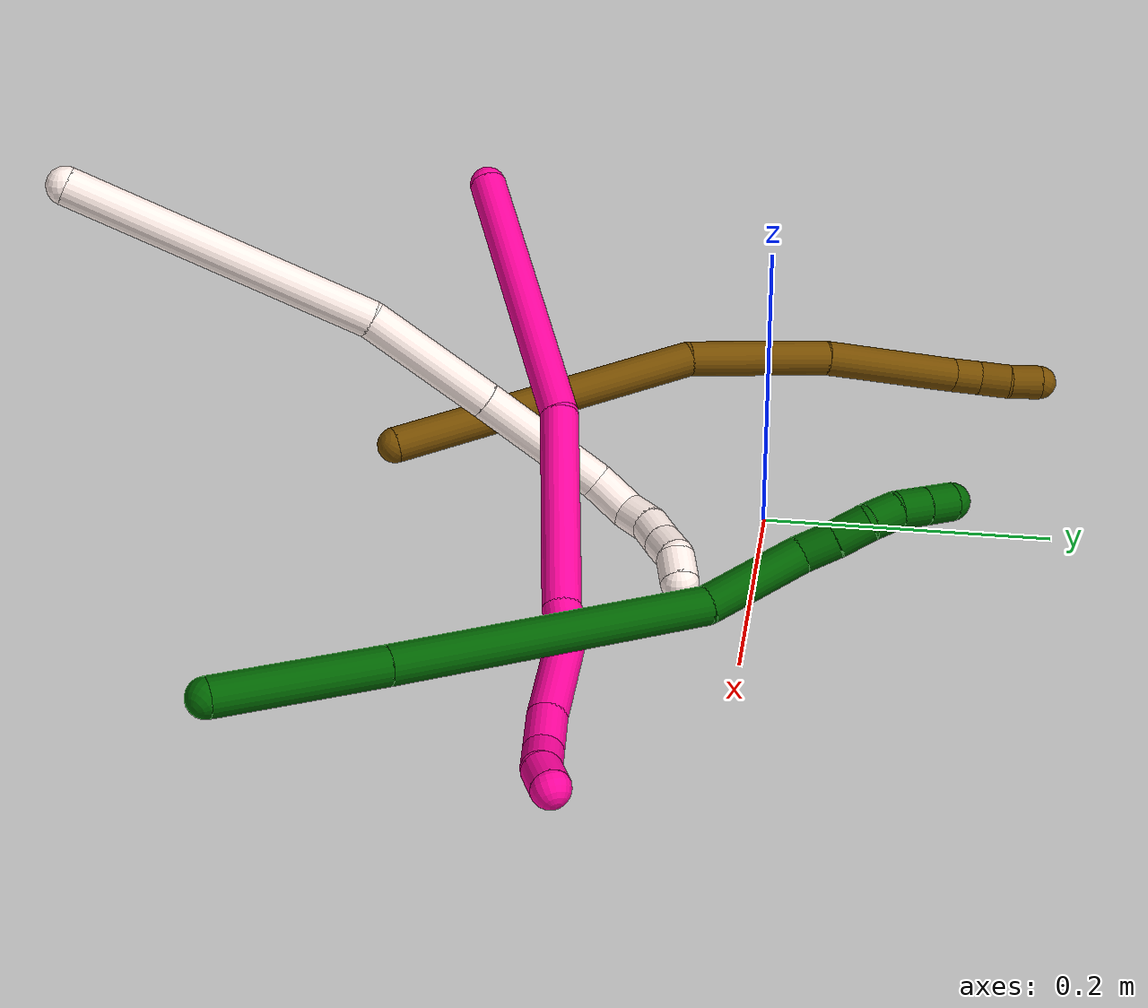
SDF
<sdf version="1.7">
 <world name="default">
  <model name="6">
   <static>0</static>
   <link name="6">
    <collision name="collision-cylinder-e_1_1_4">
     <pose>-0.021512 0.024012 -0.043616 -2.63833 -0.40784 1.35484</pose>
     <geometry><cylinder><radius>0.0125</radius><length>0.108475</length></cylinder></geometry>
     <surface>
      <friction><ode><mu>1.16</mu><mu2>1.16</mu2><slip1>0</slip1><slip2>0</slip2></ode></friction>
      <contact><ode><kp>1e+06</kp><kd>1</kd><max_vel>0</max_vel><min_depth>0.001</min_depth></ode></contact>
     </surface>
    </collision>
    <visual name="visual-cylinder-e_1_1_4">
     <pose>-0.021512 0.024012 -0.043616 -2.63833 -0.40784 1.35484</pose>
     <geometry><cylinder><radius>0.0125</radius><length>0.108475</length></cylinder></geometry>
     <material><ambient>0 0.392157 0.003922 1</ambient></material>
    </visual>
    <collision name="collision-cylinder-e_2_4_5">
     <pose>-0.083846 0.093897 -0.172918 -2.65006 -0.397635 1.35342</pose>
     <geometry><cylinder><radius>0.0125</radius><length>0.210836</length></cylinder></geometry>
     <surface>
      <friction><ode><mu>1.16</mu><mu2>1.16</mu2><slip1>0</slip1><slip2>0</slip2></ode></friction>
      <contact><ode><kp>1e+06</kp><kd>1</kd><max_vel>0</max_vel><min_depth>0.001</min_depth></ode></contact>
     </surface>
    </collision>
    <visual name="visual-cylinder-e_2_4_5">
     <pose>-0.083846 0.093897 -0.172918 -2.65006 -0.397635 1.35342</pose>
     <geometry><cylinder><radius>0.0125</radius><length>0.210836</length></cylinder></geometry>
     <material><ambient>0 0.392157 0.003922 1</ambient></material>
    </visual>
    <collision name="collision-cylinder-e_3_5_6">
     <pose>-0.139389 0.144907 -0.290631 -2.98256 -0.426072 2.43569</pose>
     <geometry><cylinder><radius>0.0125</radius><length>0.07124</length></cylinder></geometry>
     <surface>
      <friction><ode><mu>1.16</mu><mu2>1.16</mu2><slip1>0</slip1><slip2>0</slip2></ode></friction>
      <contact><ode><kp>1e+06</kp><kd>1</kd><max_vel>0</max_vel><min_depth>0.001</min_depth></ode></contact>
     </surface>
    </collision>
    <visual name="visual-cylinder-e_3_5_6">
     <pose>-0.139389 0.144907 -0.290631 -2.98256 -0.426072 2.43569</pose>
     <geometry><cylinder><radius>0.0125</radius><length>0.07124</length></cylinder></geometry>
     <material><ambient>0 0.392157 0.003922 1</ambient></material>
    </visual>
    <collision name="collision-cylinder-e_4_6_7">
     <pose>-0.16261 0.1509 -0.331244 -3.04215 -0.777803 2.8999</pose>
     <geometry><cylinder><radius>0.0125</radius><length>0.024225</length></cylinder></geometry>
     <surface>
      <friction><ode><mu>1.16</mu><mu2>1.16</mu2><slip1>0</slip1><slip2>0</slip2></ode></friction>
      <contact><ode><kp>1e+06</kp><kd>1</kd><max_vel>0</max_vel><min_depth>0.001</min_depth></ode></contact>
     </surface>
    </collision>
    <visual name="visual-cylinder-e_4_6_7">
     <pose>-0.16261 0.1509 -0.331244 -3.04215 -0.777803 2.8999</pose>
     <geometry><cylinder><radius>0.0125</radius><length>0.024225</length></cylinder></geometry>
     <material><ambient>0 0.392157 0.003922 1</ambient></material>
    </visual>
    <collision name="collision-cylinder-e_5_7_8">
     <pose>-0.179045 0.15179 -0.348531 -3.13775 -0.739419 3.13169</pose>
     <geometry><cylinder><radius>0.0125</radius><length>0.023551</length></cylinder></geometry>
     <surface>
      <friction><ode><mu>1.16</mu><mu2>1.16</mu2><slip1>0</slip1><slip2>0</slip2></ode></friction>
      <contact><ode><kp>1e+06</kp><kd>1</kd><max_vel>0</max_vel><min_depth>0.001</min_depth></ode></contact>
     </surface>
    </collision>
    <visual name="visual-cylinder-e_5_7_8">
     <pose>-0.179045 0.15179 -0.348531 -3.13775 -0.739419 3.13169</pose>
     <geometry><cylinder><radius>0.0125</radius><length>0.023551</length></cylinder></geometry>
     <material><ambient>0 0.392157 0.003922 1</ambient></material>
    </visual>
    <collision name="collision-cylinder-e_6_8_9">
     <pose>-0.191517 0.154137 -0.366294 -2.8917 -0.451613 2.14092</pose>
     <geometry><cylinder><radius>0.0125</radius><length>0.02079</length></cylinder></geometry>
     <surface>
      <friction><ode><mu>1.16</mu><mu2>1.16</mu2><slip1>0</slip1><slip2>0</slip2></ode></friction>
      <contact><ode><kp>1e+06</kp><kd>1</kd><max_vel>0</max_vel><min_depth>0.001</min_depth></ode></contact>
     </surface>
    </collision>
    <visual name="visual-cylinder-e_6_8_9">
     <pose>-0.191517 0.154137 -0.366294 -2.8917 -0.451613 2.14092</pose>
     <geometry><cylinder><radius>0.0125</radius><length>0.02079</length></cylinder></geometry>
     <material><ambient>0 0.392157 0.003922 1</ambient></material>
    </visual>
    <collision name="collision-cylinder-e_7_9_10">
     <pose>-0.200349 0.161077 -0.383648 -2.63253 -0.424869 1.38437</pose>
     <geometry><cylinder><radius>0.0125</radius><length>0.020844</length></cylinder></geometry>
     <surface>
      <friction><ode><mu>1.16</mu><mu2>1.16</mu2><slip1>0</slip1><slip2>0</slip2></ode></friction>
      <contact><ode><kp>1e+06</kp><kd>1</kd><max_vel>0</max_vel><min_depth>0.001</min_depth></ode></contact>
     </surface>
    </collision>
    <visual name="visual-cylinder-e_7_9_10">
     <pose>-0.200349 0.161077 -0.383648 -2.63253 -0.424869 1.38437</pose>
     <geometry><cylinder><radius>0.0125</radius><length>0.020844</length></cylinder></geometry>
     <material><ambient>0 0.392157 0.003922 1</ambient></material>
    </visual>
    <collision name="collision-cylinder-e_8_10_2">
     <pose>-0.208645 0.170146 -0.399981 -2.63706 -0.410665 1.3592</pose>
     <geometry><cylinder><radius>0.0125</radius><length>0.020039</length></cylinder></geometry>
     <surface>
      <friction><ode><mu>1.16</mu><mu2>1.16</mu2><slip1>0</slip1><slip2>0</slip2></ode></friction>
      <contact><ode><kp>1e+06</kp><kd>1</kd><max_vel>0</max_vel><min_depth>0.001</min_depth></ode></contact>
     </surface>
    </collision>
    <visual name="visual-cylinder-e_8_10_2">
     <pose>-0.208645 0.170146 -0.399981 -2.63706 -0.410665 1.3592</pose>
     <geometry><cylinder><radius>0.0125</radius><length>0.020039</length></cylinder></geometry>
     <material><ambient>0 0.392157 0.003922 1</ambient></material>
    </visual>
    <collision name="collision-sphere-2">
     <pose>-0.212645 0.174586 -0.408023 0 -0 0</pose>
     <geometry><sphere><radius>0.0125</radius></sphere></geometry>
     <surface>
      <friction><ode><mu>1.16</mu><mu2>1.16</mu2><slip1>0</slip1><slip2>0</slip2></ode></friction>
      <contact><ode><kp>1e+06</kp><kd>1</kd><max_vel>0</max_vel><min_depth>0.001</min_depth></ode></contact>
     </surface>
    </collision>
    <visual name="visual-sphere-2">
     <pose>-0.212645 0.174586 -0.408023 0 -0 0</pose>
     <geometry><sphere><radius>0.0125</radius></sphere></geometry>
     <material><ambient>0 0.392157 0.003922 1</ambient></material>
    </visual>
    <collision name="collision-sphere-10">
     <pose>-0.204645 0.165705 -0.391939 0 -0 0</pose>
     <geometry><sphere><radius>0.0125</radius></sphere></geometry>
     <surface>
      <friction><ode><mu>1.16</mu><mu2>1.16</mu2><slip1>0</slip1><slip2>0</slip2></ode></friction>
      <contact><ode><kp>1e+06</kp><kd>1</kd><max_vel>0</max_vel><min_depth>0.001</min_depth></ode></contact>
     </surface>
    </collision>
    <visual name="visual-sphere-10">
     <pose>-0.204645 0.165705 -0.391939 0 -0 0</pose>
     <geometry><sphere><radius>0.0125</radius></sphere></geometry>
     <material><ambient>0 0.392157 0.003922 1</ambient></material>
    </visual>
    <collision name="collision-sphere-9">
     <pose>-0.196054 0.15645 -0.375357 0 -0 0</pose>
     <geometry><sphere><radius>0.0125</radius></sphere></geometry>
     <surface>
      <friction><ode><mu>1.16</mu><mu2>1.16</mu2><slip1>0</slip1><slip2>0</slip2></ode></friction>
      <contact><ode><kp>1e+06</kp><kd>1</kd><max_vel>0</max_vel><min_depth>0.001</min_depth></ode></contact>
     </surface>
    </collision>
    <visual name="visual-sphere-9">
     <pose>-0.196054 0.15645 -0.375357 0 -0 0</pose>
     <geometry><sphere><radius>0.0125</radius></sphere></geometry>
     <material><ambient>0 0.392157 0.003922 1</ambient></material>
    </visual>
    <collision name="collision-sphere-4">
     <pose>-0.043024 0.048025 -0.087231 0 -0 0</pose>
     <geometry><sphere><radius>0.0125</radius></sphere></geometry>
     <surface>
      <friction><ode><mu>1.16</mu><mu2>1.16</mu2><slip1>0</slip1><slip2>0</slip2></ode></friction>
      <contact><ode><kp>1e+06</kp><kd>1</kd><max_vel>0</max_vel><min_depth>0.001</min_depth></ode></contact>
     </surface>
    </collision>
    <visual name="visual-sphere-4">
     <pose>-0.043024 0.048025 -0.087231 0 -0 0</pose>
     <geometry><sphere><radius>0.0125</radius></sphere></geometry>
     <material><ambient>0 0.392157 0.003922 1</ambient></material>
    </visual>
    <collision name="collision-sphere-1">
     <geometry><sphere><radius>0.0125</radius></sphere></geometry>
     <surface>
      <friction><ode><mu>1.16</mu><mu2>1.16</mu2><slip1>0</slip1><slip2>0</slip2></ode></friction>
      <contact><ode><kp>1e+06</kp><kd>1</kd><max_vel>0</max_vel><min_depth>0.001</min_depth></ode></contact>
     </surface>
    </collision>
    <visual name="visual-sphere-1">
     <geometry><sphere><radius>0.0125</radius></sphere></geometry>
     <material><ambient>0 0.392157 0.003922 1</ambient></material>
    </visual>
    <collision name="collision-sphere-8">
     <pose>-0.18698 0.151824 -0.357232 0 -0 0</pose>
     <geometry><sphere><radius>0.0125</radius></sphere></geometry>
     <surface>
      <friction><ode><mu>1.16</mu><mu2>1.16</mu2><slip1>0</slip1><slip2>0</slip2></ode></friction>
      <contact><ode><kp>1e+06</kp><kd>1</kd><max_vel>0</max_vel><min_depth>0.001</min_depth></ode></contact>
     </surface>
    </collision>
    <visual name="visual-sphere-8">
     <pose>-0.18698 0.151824 -0.357232 0 -0 0</pose>
     <geometry><sphere><radius>0.0125</radius></sphere></geometry>
     <material><ambient>0 0.392157 0.003922 1</ambient></material>
    </visual>
    <collision name="collision-sphere-5">
     <pose>-0.124668 0.13977 -0.258605 0 -0 0</pose>
     <geometry><sphere><radius>0.0125</radius></sphere></geometry>
     <surface>
      <friction><ode><mu>1.16</mu><mu2>1.16</mu2><slip1>0</slip1><slip2>0</slip2></ode></friction>
      <contact><ode><kp>1e+06</kp><kd>1</kd><max_vel>0</max_vel><min_depth>0.001</min_depth></ode></contact>
     </surface>
    </collision>
    <visual name="visual-sphere-5">
     <pose>-0.124668 0.13977 -0.258605 0 -0 0</pose>
     <geometry><sphere><radius>0.0125</radius></sphere></geometry>
     <material><ambient>0 0.392157 0.003922 1</ambient></material>
    </visual>
    <collision name="collision-sphere-6">
     <pose>-0.154111 0.150043 -0.322657 0 -0 0</pose>
     <geometry><sphere><radius>0.0125</radius></sphere></geometry>
     <surface>
      <friction><ode><mu>1.16</mu><mu2>1.16</mu2><slip1>0</slip1><slip2>0</slip2></ode></friction>
      <contact><ode><kp>1e+06</kp><kd>1</kd><max_vel>0</max_vel><min_depth>0.001</min_depth></ode></contact>
     </surface>
    </collision>
    <visual name="visual-sphere-6">
     <pose>-0.154111 0.150043 -0.322657 0 -0 0</pose>
     <geometry><sphere><radius>0.0125</radius></sphere></geometry>
     <material><ambient>0 0.392157 0.003922 1</ambient></material>
    </visual>
    <collision name="collision-sphere-7">
     <pose>-0.17111 0.151757 -0.339831 0 -0 0</pose>
     <geometry><sphere><radius>0.0125</radius></sphere></geometry>
     <surface>
      <friction><ode><mu>1.16</mu><mu2>1.16</mu2><slip1>0</slip1><slip2>0</slip2></ode></friction>
      <contact><ode><kp>1e+06</kp><kd>1</kd><max_vel>0</max_vel><min_depth>0.001</min_depth></ode></contact>
     </surface>
    </collision>
    <visual name="visual-sphere-7">
     <pose>-0.17111 0.151757 -0.339831 0 -0 0</pose>
     <geometry><sphere><radius>0.0125</radius></sphere></geometry>
     <material><ambient>0 0.392157 0.003922 1</ambient></material>
    </visual>
    <inertial>
     <pose>-0.100872 0.099854 -0.203506 0 -0 0</pose>
     <mass>0.5</mass>
     <inertia>
      <ixx>0.00097</ixx>
      <ixy>0</ixy>
      <ixz>0</ixz>
      <iyy>0.000869</iyy>
      <iyz>0</iyz>
      <izz>-6.3e-05</izz>
     </inertia>
    </inertial>
   </link>
   <pose>0.387447 -0.28635 0.066951 -1.84029 0.354952 -2.1042</pose>
  </model>
  <model name="11">
   <static>0</static>
   <link name="11">
    <collision name="collision-cylinder-e_1_1_4">
     <pose>-0.013264 0.090094 -0.049282 -2.07134 -0.128449 0.216127</pose>
     <geometry><cylinder><radius>0.0125</radius><length>0.20709</length></cylinder></geometry>
     <surface>
      <friction><ode><mu>1.16</mu><mu2>1.16</mu2><slip1>0</slip1><slip2>0</slip2></ode></friction>
      <contact><ode><kp>1e+06</kp><kd>1</kd><max_vel>0</max_vel><min_depth>0.001</min_depth></ode></contact>
     </surface>
    </collision>
    <visual name="visual-cylinder-e_1_1_4">
     <pose>-0.013264 0.090094 -0.049282 -2.07134 -0.128449 0.216127</pose>
     <geometry><cylinder><radius>0.0125</radius><length>0.20709</length></cylinder></geometry>
     <material><ambient>1 0.933333 0.909804 1</ambient></material>
    </visual>
    <collision name="collision-cylinder-e_2_4_5">
     <pose>-0.028026 0.215361 -0.127117 -2.25266 -0.033069 0.069416</pose>
     <geometry><cylinder><radius>0.0125</radius><length>0.090657</length></cylinder></geometry>
     <surface>
      <friction><ode><mu>1.16</mu><mu2>1.16</mu2><slip1>0</slip1><slip2>0</slip2></ode></friction>
      <contact><ode><kp>1e+06</kp><kd>1</kd><max_vel>0</max_vel><min_depth>0.001</min_depth></ode></contact>
     </surface>
    </collision>
    <visual name="visual-cylinder-e_2_4_5">
     <pose>-0.028026 0.215361 -0.127117 -2.25266 -0.033069 0.069416</pose>
     <geometry><cylinder><radius>0.0125</radius><length>0.090657</length></cylinder></geometry>
     <material><ambient>1 0.933333 0.909804 1</ambient></material>
    </visual>
    <collision name="collision-cylinder-e_3_5_6">
     <pose>-0.03146 0.285559 -0.185319 -2.27328 -0.042143 0.090843</pose>
     <geometry><cylinder><radius>0.0125</radius><length>0.09186</length></cylinder></geometry>
     <surface>
      <friction><ode><mu>1.16</mu><mu2>1.16</mu2><slip1>0</slip1><slip2>0</slip2></ode></friction>
      <contact><ode><kp>1e+06</kp><kd>1</kd><max_vel>0</max_vel><min_depth>0.001</min_depth></ode></contact>
     </surface>
    </collision>
    <visual name="visual-cylinder-e_3_5_6">
     <pose>-0.03146 0.285559 -0.185319 -2.27328 -0.042143 0.090843</pose>
     <geometry><cylinder><radius>0.0125</radius><length>0.09186</length></cylinder></geometry>
     <material><ambient>1 0.933333 0.909804 1</ambient></material>
    </visual>
    <collision name="collision-cylinder-e_4_6_7">
     <pose>-0.027892 0.331874 -0.222281 -2.14551 0.38831 -0.693966</pose>
     <geometry><cylinder><radius>0.0125</radius><length>0.029068</length></cylinder></geometry>
     <surface>
      <friction><ode><mu>1.16</mu><mu2>1.16</mu2><slip1>0</slip1><slip2>0</slip2></ode></friction>
      <contact><ode><kp>1e+06</kp><kd>1</kd><max_vel>0</max_vel><min_depth>0.001</min_depth></ode></contact>
     </surface>
    </collision>
    <visual name="visual-cylinder-e_4_6_7">
     <pose>-0.027892 0.331874 -0.222281 -2.14551 0.38831 -0.693966</pose>
     <geometry><cylinder><radius>0.0125</radius><length>0.029068</length></cylinder></geometry>
     <material><ambient>1 0.933333 0.909804 1</ambient></material>
    </visual>
    <collision name="collision-cylinder-e_5_7_8">
     <pose>-0.015696 0.351388 -0.230137 -1.6368 0.682107 -0.724823</pose>
     <geometry><cylinder><radius>0.0125</radius><length>0.021233</length></cylinder></geometry>
     <surface>
      <friction><ode><mu>1.16</mu><mu2>1.16</mu2><slip1>0</slip1><slip2>0</slip2></ode></friction>
      <contact><ode><kp>1e+06</kp><kd>1</kd><max_vel>0</max_vel><min_depth>0.001</min_depth></ode></contact>
     </surface>
    </collision>
    <visual name="visual-cylinder-e_5_7_8">
     <pose>-0.015696 0.351388 -0.230137 -1.6368 0.682107 -0.724823</pose>
     <geometry><cylinder><radius>0.0125</radius><length>0.021233</length></cylinder></geometry>
     <material><ambient>1 0.933333 0.909804 1</ambient></material>
    </visual>
    <collision name="collision-cylinder-e_6_8_9">
     <pose>-0.000669 0.365118 -0.231469 -1.71304 0.982218 -1.10545</pose>
     <geometry><cylinder><radius>0.0125</radius><length>0.02004</length></cylinder></geometry>
     <surface>
      <friction><ode><mu>1.16</mu><mu2>1.16</mu2><slip1>0</slip1><slip2>0</slip2></ode></friction>
      <contact><ode><kp>1e+06</kp><kd>1</kd><max_vel>0</max_vel><min_depth>0.001</min_depth></ode></contact>
     </surface>
    </collision>
    <visual name="visual-cylinder-e_6_8_9">
     <pose>-0.000669 0.365118 -0.231469 -1.71304 0.982218 -1.10545</pose>
     <geometry><cylinder><radius>0.0125</radius><length>0.02004</length></cylinder></geometry>
     <material><ambient>1 0.933333 0.909804 1</ambient></material>
    </visual>
    <collision name="collision-cylinder-e_7_9_10">
     <pose>0.016066 0.376044 -0.231972 -1.51817 0.997224 -0.953635</pose>
     <geometry><cylinder><radius>0.0125</radius><length>0.020003</length></cylinder></geometry>
     <surface>
      <friction><ode><mu>1.16</mu><mu2>1.16</mu2><slip1>0</slip1><slip2>0</slip2></ode></friction>
      <contact><ode><kp>1e+06</kp><kd>1</kd><max_vel>0</max_vel><min_depth>0.001</min_depth></ode></contact>
     </surface>
    </collision>
    <visual name="visual-cylinder-e_7_9_10">
     <pose>0.016066 0.376044 -0.231972 -1.51817 0.997224 -0.953635</pose>
     <geometry><cylinder><radius>0.0125</radius><length>0.020003</length></cylinder></geometry>
     <material><ambient>1 0.933333 0.909804 1</ambient></material>
    </visual>
    <collision name="collision-cylinder-e_8_10_2">
     <pose>0.033352 0.384189 -0.235446 -2.51422 1.08923 -2.15823</pose>
     <geometry><cylinder><radius>0.0125</radius><length>0.02005</length></cylinder></geometry>
     <surface>
      <friction><ode><mu>1.16</mu><mu2>1.16</mu2><slip1>0</slip1><slip2>0</slip2></ode></friction>
      <contact><ode><kp>1e+06</kp><kd>1</kd><max_vel>0</max_vel><min_depth>0.001</min_depth></ode></contact>
     </surface>
    </collision>
    <visual name="visual-cylinder-e_8_10_2">
     <pose>0.033352 0.384189 -0.235446 -2.51422 1.08923 -2.15823</pose>
     <geometry><cylinder><radius>0.0125</radius><length>0.02005</length></cylinder></geometry>
     <material><ambient>1 0.933333 0.909804 1</ambient></material>
    </visual>
    <collision name="collision-sphere-2">
     <pose>0.042237 0.386915 -0.239205 0 -0 0</pose>
     <geometry><sphere><radius>0.0125</radius></sphere></geometry>
     <surface>
      <friction><ode><mu>1.16</mu><mu2>1.16</mu2><slip1>0</slip1><slip2>0</slip2></ode></friction>
      <contact><ode><kp>1e+06</kp><kd>1</kd><max_vel>0</max_vel><min_depth>0.001</min_depth></ode></contact>
     </surface>
    </collision>
    <visual name="visual-sphere-2">
     <pose>0.042237 0.386915 -0.239205 0 -0 0</pose>
     <geometry><sphere><radius>0.0125</radius></sphere></geometry>
     <material><ambient>1 0.933333 0.909804 1</ambient></material>
    </visual>
    <collision name="collision-sphere-10">
     <pose>0.024467 0.381464 -0.231687 0 -0 0</pose>
     <geometry><sphere><radius>0.0125</radius></sphere></geometry>
     <surface>
      <friction><ode><mu>1.16</mu><mu2>1.16</mu2><slip1>0</slip1><slip2>0</slip2></ode></friction>
      <contact><ode><kp>1e+06</kp><kd>1</kd><max_vel>0</max_vel><min_depth>0.001</min_depth></ode></contact>
     </surface>
    </collision>
    <visual name="visual-sphere-10">
     <pose>0.024467 0.381464 -0.231687 0 -0 0</pose>
     <geometry><sphere><radius>0.0125</radius></sphere></geometry>
     <material><ambient>1 0.933333 0.909804 1</ambient></material>
    </visual>
    <collision name="collision-sphere-9">
     <pose>0.007665 0.370624 -0.232258 0 -0 0</pose>
     <geometry><sphere><radius>0.0125</radius></sphere></geometry>
     <surface>
      <friction><ode><mu>1.16</mu><mu2>1.16</mu2><slip1>0</slip1><slip2>0</slip2></ode></friction>
      <contact><ode><kp>1e+06</kp><kd>1</kd><max_vel>0</max_vel><min_depth>0.001</min_depth></ode></contact>
     </surface>
    </collision>
    <visual name="visual-sphere-9">
     <pose>0.007665 0.370624 -0.232258 0 -0 0</pose>
     <geometry><sphere><radius>0.0125</radius></sphere></geometry>
     <material><ambient>1 0.933333 0.909804 1</ambient></material>
    </visual>
    <collision name="collision-sphere-4">
     <pose>-0.026527 0.180187 -0.098565 0 -0 0</pose>
     <geometry><sphere><radius>0.0125</radius></sphere></geometry>
     <surface>
      <friction><ode><mu>1.16</mu><mu2>1.16</mu2><slip1>0</slip1><slip2>0</slip2></ode></friction>
      <contact><ode><kp>1e+06</kp><kd>1</kd><max_vel>0</max_vel><min_depth>0.001</min_depth></ode></contact>
     </surface>
    </collision>
    <visual name="visual-sphere-4">
     <pose>-0.026527 0.180187 -0.098565 0 -0 0</pose>
     <geometry><sphere><radius>0.0125</radius></sphere></geometry>
     <material><ambient>1 0.933333 0.909804 1</ambient></material>
    </visual>
    <collision name="collision-sphere-1">
     <geometry><sphere><radius>0.0125</radius></sphere></geometry>
     <surface>
      <friction><ode><mu>1.16</mu><mu2>1.16</mu2><slip1>0</slip1><slip2>0</slip2></ode></friction>
      <contact><ode><kp>1e+06</kp><kd>1</kd><max_vel>0</max_vel><min_depth>0.001</min_depth></ode></contact>
     </surface>
    </collision>
    <visual name="visual-sphere-1">
     <geometry><sphere><radius>0.0125</radius></sphere></geometry>
     <material><ambient>1 0.933333 0.909804 1</ambient></material>
    </visual>
    <collision name="collision-sphere-8">
     <pose>-0.009003 0.359611 -0.23068 0 -0 0</pose>
     <geometry><sphere><radius>0.0125</radius></sphere></geometry>
     <surface>
      <friction><ode><mu>1.16</mu><mu2>1.16</mu2><slip1>0</slip1><slip2>0</slip2></ode></friction>
      <contact><ode><kp>1e+06</kp><kd>1</kd><max_vel>0</max_vel><min_depth>0.001</min_depth></ode></contact>
     </surface>
    </collision>
    <visual name="visual-sphere-8">
     <pose>-0.009003 0.359611 -0.23068 0 -0 0</pose>
     <geometry><sphere><radius>0.0125</radius></sphere></geometry>
     <material><ambient>1 0.933333 0.909804 1</ambient></material>
    </visual>
    <collision name="collision-sphere-5">
     <pose>-0.029525 0.250534 -0.155669 0 -0 0</pose>
     <geometry><sphere><radius>0.0125</radius></sphere></geometry>
     <surface>
      <friction><ode><mu>1.16</mu><mu2>1.16</mu2><slip1>0</slip1><slip2>0</slip2></ode></friction>
      <contact><ode><kp>1e+06</kp><kd>1</kd><max_vel>0</max_vel><min_depth>0.001</min_depth></ode></contact>
     </surface>
    </collision>
    <visual name="visual-sphere-5">
     <pose>-0.029525 0.250534 -0.155669 0 -0 0</pose>
     <geometry><sphere><radius>0.0125</radius></sphere></geometry>
     <material><ambient>1 0.933333 0.909804 1</ambient></material>
    </visual>
    <collision name="collision-sphere-6">
     <pose>-0.033395 0.320583 -0.214969 0 -0 0</pose>
     <geometry><sphere><radius>0.0125</radius></sphere></geometry>
     <surface>
      <friction><ode><mu>1.16</mu><mu2>1.16</mu2><slip1>0</slip1><slip2>0</slip2></ode></friction>
      <contact><ode><kp>1e+06</kp><kd>1</kd><max_vel>0</max_vel><min_depth>0.001</min_depth></ode></contact>
     </surface>
    </collision>
    <visual name="visual-sphere-6">
     <pose>-0.033395 0.320583 -0.214969 0 -0 0</pose>
     <geometry><sphere><radius>0.0125</radius></sphere></geometry>
     <material><ambient>1 0.933333 0.909804 1</ambient></material>
    </visual>
    <collision name="collision-sphere-7">
     <pose>-0.022389 0.343165 -0.229593 0 -0 0</pose>
     <geometry><sphere><radius>0.0125</radius></sphere></geometry>
     <surface>
      <friction><ode><mu>1.16</mu><mu2>1.16</mu2><slip1>0</slip1><slip2>0</slip2></ode></friction>
      <contact><ode><kp>1e+06</kp><kd>1</kd><max_vel>0</max_vel><min_depth>0.001</min_depth></ode></contact>
     </surface>
    </collision>
    <visual name="visual-sphere-7">
     <pose>-0.022389 0.343165 -0.229593 0 -0 0</pose>
     <geometry><sphere><radius>0.0125</radius></sphere></geometry>
     <material><ambient>1 0.933333 0.909804 1</ambient></material>
    </visual>
    <inertial>
     <pose>-0.01669 0.208125 -0.128201 0 -0 0</pose>
     <mass>0.5</mass>
     <inertia>
      <ixx>0.00103</ixx>
      <ixy>0</ixy>
      <ixz>0</ixz>
      <iyy>-0.000219</iyy>
      <iyz>0</iyz>
      <izz>-0.000683</izz>
     </inertia>
    </inertial>
   </link>
   <pose>0.147009 -0.432 0.279674 0.025837 0.09405 -0.040333</pose>
  </model>
  <model name="12">
   <static>0</static>
   <link name="12">
    <collision name="collision-cylinder-e_1_1_4">
     <pose>-0.044355 0.062276 -0.081064 -2.48653 -0.409386 1.09694</pose>
     <geometry><cylinder><radius>0.0125</radius><length>0.222864</length></cylinder></geometry>
     <surface>
      <friction><ode><mu>1.16</mu><mu2>1.16</mu2><slip1>0</slip1><slip2>0</slip2></ode></friction>
      <contact><ode><kp>1e+06</kp><kd>1</kd><max_vel>0</max_vel><min_depth>0.001</min_depth></ode></contact>
     </surface>
    </collision>
    <visual name="visual-cylinder-e_1_1_4">
     <pose>-0.044355 0.062276 -0.081064 -2.48653 -0.409386 1.09694</pose>
     <geometry><cylinder><radius>0.0125</radius><length>0.222864</length></cylinder></geometry>
     <material><ambient>0.466667 0.301961 0 1</ambient></material>
    </visual>
    <collision name="collision-cylinder-e_2_4_5">
     <pose>-0.097258 0.152318 -0.20632 -2.5806 -0.162338 0.550405</pose>
     <geometry><cylinder><radius>0.0125</radius><length>0.105772</length></cylinder></geometry>
     <surface>
      <friction><ode><mu>1.16</mu><mu2>1.16</mu2><slip1>0</slip1><slip2>0</slip2></ode></friction>
      <contact><ode><kp>1e+06</kp><kd>1</kd><max_vel>0</max_vel><min_depth>0.001</min_depth></ode></contact>
     </surface>
    </collision>
    <visual name="visual-cylinder-e_2_4_5">
     <pose>-0.097258 0.152318 -0.20632 -2.5806 -0.162338 0.550405</pose>
     <geometry><cylinder><radius>0.0125</radius><length>0.105772</length></cylinder></geometry>
     <material><ambient>0.466667 0.301961 0 1</ambient></material>
    </visual>
    <collision name="collision-cylinder-e_3_5_6">
     <pose>-0.108491 0.203909 -0.295838 -2.65768 -0.052402 0.211586</pose>
     <geometry><cylinder><radius>0.0125</radius><length>0.102554</length></cylinder></geometry>
     <surface>
      <friction><ode><mu>1.16</mu><mu2>1.16</mu2><slip1>0</slip1><slip2>0</slip2></ode></friction>
      <contact><ode><kp>1e+06</kp><kd>1</kd><max_vel>0</max_vel><min_depth>0.001</min_depth></ode></contact>
     </surface>
    </collision>
    <visual name="visual-cylinder-e_3_5_6">
     <pose>-0.108491 0.203909 -0.295838 -2.65768 -0.052402 0.211586</pose>
     <geometry><cylinder><radius>0.0125</radius><length>0.102554</length></cylinder></geometry>
     <material><ambient>0.466667 0.301961 0 1</ambient></material>
    </visual>
    <collision name="collision-cylinder-e_4_6_7">
     <pose>-0.11185 0.233202 -0.350848 -2.62744 -0.060396 0.228802</pose>
     <geometry><cylinder><radius>0.0125</radius><length>0.022281</length></cylinder></geometry>
     <surface>
      <friction><ode><mu>1.16</mu><mu2>1.16</mu2><slip1>0</slip1><slip2>0</slip2></ode></friction>
      <contact><ode><kp>1e+06</kp><kd>1</kd><max_vel>0</max_vel><min_depth>0.001</min_depth></ode></contact>
     </surface>
    </collision>
    <visual name="visual-cylinder-e_4_6_7">
     <pose>-0.11185 0.233202 -0.350848 -2.62744 -0.060396 0.228802</pose>
     <geometry><cylinder><radius>0.0125</radius><length>0.022281</length></cylinder></geometry>
     <material><ambient>0.466667 0.301961 0 1</ambient></material>
    </visual>
    <collision name="collision-cylinder-e_5_7_8">
     <pose>-0.1116 0.247039 -0.368672 -2.34245 0.07883 -0.18623</pose>
     <geometry><cylinder><radius>0.0125</radius><length>0.023423</length></cylinder></geometry>
     <surface>
      <friction><ode><mu>1.16</mu><mu2>1.16</mu2><slip1>0</slip1><slip2>0</slip2></ode></friction>
      <contact><ode><kp>1e+06</kp><kd>1</kd><max_vel>0</max_vel><min_depth>0.001</min_depth></ode></contact>
     </surface>
    </collision>
    <visual name="visual-cylinder-e_5_7_8">
     <pose>-0.1116 0.247039 -0.368672 -2.34245 0.07883 -0.18623</pose>
     <geometry><cylinder><radius>0.0125</radius><length>0.023423</length></cylinder></geometry>
     <material><ambient>0.466667 0.301961 0 1</ambient></material>
    </visual>
    <collision name="collision-cylinder-e_6_8_2">
     <pose>-0.111392 0.262971 -0.385517 -2.42614 -0.061913 0.165304</pose>
     <geometry><cylinder><radius>0.0125</radius><length>0.023106</length></cylinder></geometry>
     <surface>
      <friction><ode><mu>1.16</mu><mu2>1.16</mu2><slip1>0</slip1><slip2>0</slip2></ode></friction>
      <contact><ode><kp>1e+06</kp><kd>1</kd><max_vel>0</max_vel><min_depth>0.001</min_depth></ode></contact>
     </surface>
    </collision>
    <visual name="visual-cylinder-e_6_8_2">
     <pose>-0.111392 0.262971 -0.385517 -2.42614 -0.061913 0.165304</pose>
     <geometry><cylinder><radius>0.0125</radius><length>0.023106</length></cylinder></geometry>
     <material><ambient>0.466667 0.301961 0 1</ambient></material>
    </visual>
    <collision name="collision-sphere-2">
     <pose>-0.112107 0.270535 -0.39422 0 -0 0</pose>
     <geometry><sphere><radius>0.0125</radius></sphere></geometry>
     <surface>
      <friction><ode><mu>1.16</mu><mu2>1.16</mu2><slip1>0</slip1><slip2>0</slip2></ode></friction>
      <contact><ode><kp>1e+06</kp><kd>1</kd><max_vel>0</max_vel><min_depth>0.001</min_depth></ode></contact>
     </surface>
    </collision>
    <visual name="visual-sphere-2">
     <pose>-0.112107 0.270535 -0.39422 0 -0 0</pose>
     <geometry><sphere><radius>0.0125</radius></sphere></geometry>
     <material><ambient>0.466667 0.301961 0 1</ambient></material>
    </visual>
    <collision name="collision-sphere-4">
     <pose>-0.08871 0.124552 -0.162128 0 -0 0</pose>
     <geometry><sphere><radius>0.0125</radius></sphere></geometry>
     <surface>
      <friction><ode><mu>1.16</mu><mu2>1.16</mu2><slip1>0</slip1><slip2>0</slip2></ode></friction>
      <contact><ode><kp>1e+06</kp><kd>1</kd><max_vel>0</max_vel><min_depth>0.001</min_depth></ode></contact>
     </surface>
    </collision>
    <visual name="visual-sphere-4">
     <pose>-0.08871 0.124552 -0.162128 0 -0 0</pose>
     <geometry><sphere><radius>0.0125</radius></sphere></geometry>
     <material><ambient>0.466667 0.301961 0 1</ambient></material>
    </visual>
    <collision name="collision-sphere-1">
     <geometry><sphere><radius>0.0125</radius></sphere></geometry>
     <surface>
      <friction><ode><mu>1.16</mu><mu2>1.16</mu2><slip1>0</slip1><slip2>0</slip2></ode></friction>
      <contact><ode><kp>1e+06</kp><kd>1</kd><max_vel>0</max_vel><min_depth>0.001</min_depth></ode></contact>
     </surface>
    </collision>
    <visual name="visual-sphere-1">
     <geometry><sphere><radius>0.0125</radius></sphere></geometry>
     <material><ambient>0.466667 0.301961 0 1</ambient></material>
    </visual>
    <collision name="collision-sphere-8">
     <pose>-0.110677 0.255407 -0.376813 0 -0 0</pose>
     <geometry><sphere><radius>0.0125</radius></sphere></geometry>
     <surface>
      <friction><ode><mu>1.16</mu><mu2>1.16</mu2><slip1>0</slip1><slip2>0</slip2></ode></friction>
      <contact><ode><kp>1e+06</kp><kd>1</kd><max_vel>0</max_vel><min_depth>0.001</min_depth></ode></contact>
     </surface>
    </collision>
    <visual name="visual-sphere-8">
     <pose>-0.110677 0.255407 -0.376813 0 -0 0</pose>
     <geometry><sphere><radius>0.0125</radius></sphere></geometry>
     <material><ambient>0.466667 0.301961 0 1</ambient></material>
    </visual>
    <collision name="collision-sphere-5">
     <pose>-0.105806 0.180085 -0.250511 0 -0 0</pose>
     <geometry><sphere><radius>0.0125</radius></sphere></geometry>
     <surface>
      <friction><ode><mu>1.16</mu><mu2>1.16</mu2><slip1>0</slip1><slip2>0</slip2></ode></friction>
      <contact><ode><kp>1e+06</kp><kd>1</kd><max_vel>0</max_vel><min_depth>0.001</min_depth></ode></contact>
     </surface>
    </collision>
    <visual name="visual-sphere-5">
     <pose>-0.105806 0.180085 -0.250511 0 -0 0</pose>
     <geometry><sphere><radius>0.0125</radius></sphere></geometry>
     <material><ambient>0.466667 0.301961 0 1</ambient></material>
    </visual>
    <collision name="collision-sphere-6">
     <pose>-0.111177 0.227733 -0.341165 0 -0 0</pose>
     <geometry><sphere><radius>0.0125</radius></sphere></geometry>
     <surface>
      <friction><ode><mu>1.16</mu><mu2>1.16</mu2><slip1>0</slip1><slip2>0</slip2></ode></friction>
      <contact><ode><kp>1e+06</kp><kd>1</kd><max_vel>0</max_vel><min_depth>0.001</min_depth></ode></contact>
     </surface>
    </collision>
    <visual name="visual-sphere-6">
     <pose>-0.111177 0.227733 -0.341165 0 -0 0</pose>
     <geometry><sphere><radius>0.0125</radius></sphere></geometry>
     <material><ambient>0.466667 0.301961 0 1</ambient></material>
    </visual>
    <collision name="collision-sphere-7">
     <pose>-0.112522 0.238671 -0.36053 0 -0 0</pose>
     <geometry><sphere><radius>0.0125</radius></sphere></geometry>
     <surface>
      <friction><ode><mu>1.16</mu><mu2>1.16</mu2><slip1>0</slip1><slip2>0</slip2></ode></friction>
      <contact><ode><kp>1e+06</kp><kd>1</kd><max_vel>0</max_vel><min_depth>0.001</min_depth></ode></contact>
     </surface>
    </collision>
    <visual name="visual-sphere-7">
     <pose>-0.112522 0.238671 -0.36053 0 -0 0</pose>
     <geometry><sphere><radius>0.0125</radius></sphere></geometry>
     <material><ambient>0.466667 0.301961 0 1</ambient></material>
    </visual>
    <inertial>
     <pose>-0.077957 0.135921 -0.191178 0 -0 0</pose>
     <mass>0.5</mass>
     <inertia>
      <ixx>0.001398</ixx>
      <ixy>0</ixy>
      <ixz>0</ixz>
      <iyy>0.000564</iyy>
      <iyz>0</iyz>
      <izz>-0.00026</izz>
     </inertia>
    </inertial>
   </link>
   <pose>0.048053 -0.253057 0.06506 0.704554 0.740807 0.085366</pose>
  </model>
  <model name="18">
   <static>0</static>
   <link name="18">
    <collision name="collision-cylinder-e_1_1_4">
     <pose>0.007669 0.003177 -0.101 -3.11015 0.075743 -2.35492</pose>
     <geometry><cylinder><radius>0.0125</radius><length>0.202682</length></cylinder></geometry>
     <surface>
      <friction><ode><mu>1.16</mu><mu2>1.16</mu2><slip1>0</slip1><slip2>0</slip2></ode></friction>
      <contact><ode><kp>1e+06</kp><kd>1</kd><max_vel>0</max_vel><min_depth>0.001</min_depth></ode></contact>
     </surface>
    </collision>
    <visual name="visual-cylinder-e_1_1_4">
     <pose>0.007669 0.003177 -0.101 -3.11015 0.075743 -2.35492</pose>
     <geometry><cylinder><radius>0.0125</radius><length>0.202682</length></cylinder></geometry>
     <material><ambient>1 0.007843 0.615686 1</ambient></material>
    </visual>
    <collision name="collision-cylinder-e_2_4_5">
     <pose>0.025968 -0.008642 -0.268068 2.91841 0.155647 1.21593</pose>
     <geometry><cylinder><radius>0.0125</radius><length>0.137154</length></cylinder></geometry>
     <surface>
      <friction><ode><mu>1.16</mu><mu2>1.16</mu2><slip1>0</slip1><slip2>0</slip2></ode></friction>
      <contact><ode><kp>1e+06</kp><kd>1</kd><max_vel>0</max_vel><min_depth>0.001</min_depth></ode></contact>
     </surface>
    </collision>
    <visual name="visual-cylinder-e_2_4_5">
     <pose>0.025968 -0.008642 -0.268068 2.91841 0.155647 1.21593</pose>
     <geometry><cylinder><radius>0.0125</radius><length>0.137154</length></cylinder></geometry>
     <material><ambient>1 0.007843 0.615686 1</ambient></material>
    </visual>
    <collision name="collision-cylinder-e_3_5_6">
     <pose>0.038328 -0.023995 -0.345038 3.10873 0.157262 2.73036</pose>
     <geometry><cylinder><radius>0.0125</radius><length>0.022087</length></cylinder></geometry>
     <surface>
      <friction><ode><mu>1.16</mu><mu2>1.16</mu2><slip1>0</slip1><slip2>0</slip2></ode></friction>
      <contact><ode><kp>1e+06</kp><kd>1</kd><max_vel>0</max_vel><min_depth>0.001</min_depth></ode></contact>
     </surface>
    </collision>
    <visual name="visual-cylinder-e_3_5_6">
     <pose>0.038328 -0.023995 -0.345038 3.10873 0.157262 2.73036</pose>
     <geometry><cylinder><radius>0.0125</radius><length>0.022087</length></cylinder></geometry>
     <material><ambient>1 0.007843 0.615686 1</ambient></material>
    </visual>
    <collision name="collision-cylinder-e_4_6_7">
     <pose>0.058337 -0.026662 -0.38481 3.06181 0.562971 2.86726</pose>
     <geometry><cylinder><radius>0.0125</radius><length>0.068498</length></cylinder></geometry>
     <surface>
      <friction><ode><mu>1.16</mu><mu2>1.16</mu2><slip1>0</slip1><slip2>0</slip2></ode></friction>
      <contact><ode><kp>1e+06</kp><kd>1</kd><max_vel>0</max_vel><min_depth>0.001</min_depth></ode></contact>
     </surface>
    </collision>
    <visual name="visual-cylinder-e_4_6_7">
     <pose>0.058337 -0.026662 -0.38481 3.06181 0.562971 2.86726</pose>
     <geometry><cylinder><radius>0.0125</radius><length>0.068498</length></cylinder></geometry>
     <material><ambient>1 0.007843 0.615686 1</ambient></material>
    </visual>
    <collision name="collision-cylinder-e_5_7_8">
     <pose>0.083684 -0.028582 -0.426123 -3.11035 0.516477 -3.02342</pose>
     <geometry><cylinder><radius>0.0125</radius><length>0.028629</length></cylinder></geometry>
     <surface>
      <friction><ode><mu>1.16</mu><mu2>1.16</mu2><slip1>0</slip1><slip2>0</slip2></ode></friction>
      <contact><ode><kp>1e+06</kp><kd>1</kd><max_vel>0</max_vel><min_depth>0.001</min_depth></ode></contact>
     </surface>
    </collision>
    <visual name="visual-cylinder-e_5_7_8">
     <pose>0.083684 -0.028582 -0.426123 -3.11035 0.516477 -3.02342</pose>
     <geometry><cylinder><radius>0.0125</radius><length>0.028629</length></cylinder></geometry>
     <material><ambient>1 0.007843 0.615686 1</ambient></material>
    </visual>
    <collision name="collision-cylinder-e_6_8_9">
     <pose>0.097082 -0.02576 -0.446209 -2.83353 0.667944 -2.30008</pose>
     <geometry><cylinder><radius>0.0125</radius><length>0.020438</length></cylinder></geometry>
     <surface>
      <friction><ode><mu>1.16</mu><mu2>1.16</mu2><slip1>0</slip1><slip2>0</slip2></ode></friction>
      <contact><ode><kp>1e+06</kp><kd>1</kd><max_vel>0</max_vel><min_depth>0.001</min_depth></ode></contact>
     </surface>
    </collision>
    <visual name="visual-cylinder-e_6_8_9">
     <pose>0.097082 -0.02576 -0.446209 -2.83353 0.667944 -2.30008</pose>
     <geometry><cylinder><radius>0.0125</radius><length>0.020438</length></cylinder></geometry>
     <material><ambient>1 0.007843 0.615686 1</ambient></material>
    </visual>
    <collision name="collision-cylinder-e_7_9_2">
     <pose>0.107168 -0.019163 -0.462441 -2.69006 0.375048 -1.38096</pose>
     <geometry><cylinder><radius>0.0125</radius><length>0.020512</length></cylinder></geometry>
     <surface>
      <friction><ode><mu>1.16</mu><mu2>1.16</mu2><slip1>0</slip1><slip2>0</slip2></ode></friction>
      <contact><ode><kp>1e+06</kp><kd>1</kd><max_vel>0</max_vel><min_depth>0.001</min_depth></ode></contact>
     </surface>
    </collision>
    <visual name="visual-cylinder-e_7_9_2">
     <pose>0.107168 -0.019163 -0.462441 -2.69006 0.375048 -1.38096</pose>
     <geometry><cylinder><radius>0.0125</radius><length>0.020512</length></cylinder></geometry>
     <material><ambient>1 0.007843 0.615686 1</ambient></material>
    </visual>
    <collision name="collision-sphere-2">
     <pose>0.110925 -0.014999 -0.471028 0 -0 0</pose>
     <geometry><sphere><radius>0.0125</radius></sphere></geometry>
     <surface>
      <friction><ode><mu>1.16</mu><mu2>1.16</mu2><slip1>0</slip1><slip2>0</slip2></ode></friction>
      <contact><ode><kp>1e+06</kp><kd>1</kd><max_vel>0</max_vel><min_depth>0.001</min_depth></ode></contact>
     </surface>
    </collision>
    <visual name="visual-sphere-2">
     <pose>0.110925 -0.014999 -0.471028 0 -0 0</pose>
     <geometry><sphere><radius>0.0125</radius></sphere></geometry>
     <material><ambient>1 0.007843 0.615686 1</ambient></material>
    </visual>
    <collision name="collision-sphere-9">
     <pose>0.103411 -0.023328 -0.453854 0 -0 0</pose>
     <geometry><sphere><radius>0.0125</radius></sphere></geometry>
     <surface>
      <friction><ode><mu>1.16</mu><mu2>1.16</mu2><slip1>0</slip1><slip2>0</slip2></ode></friction>
      <contact><ode><kp>1e+06</kp><kd>1</kd><max_vel>0</max_vel><min_depth>0.001</min_depth></ode></contact>
     </surface>
    </collision>
    <visual name="visual-sphere-9">
     <pose>0.103411 -0.023328 -0.453854 0 -0 0</pose>
     <geometry><sphere><radius>0.0125</radius></sphere></geometry>
     <material><ambient>1 0.007843 0.615686 1</ambient></material>
    </visual>
    <collision name="collision-sphere-4">
     <pose>0.015337 0.006354 -0.202001 0 -0 0</pose>
     <geometry><sphere><radius>0.0125</radius></sphere></geometry>
     <surface>
      <friction><ode><mu>1.16</mu><mu2>1.16</mu2><slip1>0</slip1><slip2>0</slip2></ode></friction>
      <contact><ode><kp>1e+06</kp><kd>1</kd><max_vel>0</max_vel><min_depth>0.001</min_depth></ode></contact>
     </surface>
    </collision>
    <visual name="visual-sphere-4">
     <pose>0.015337 0.006354 -0.202001 0 -0 0</pose>
     <geometry><sphere><radius>0.0125</radius></sphere></geometry>
     <material><ambient>1 0.007843 0.615686 1</ambient></material>
    </visual>
    <collision name="collision-sphere-1">
     <geometry><sphere><radius>0.0125</radius></sphere></geometry>
     <surface>
      <friction><ode><mu>1.16</mu><mu2>1.16</mu2><slip1>0</slip1><slip2>0</slip2></ode></friction>
      <contact><ode><kp>1e+06</kp><kd>1</kd><max_vel>0</max_vel><min_depth>0.001</min_depth></ode></contact>
     </surface>
    </collision>
    <visual name="visual-sphere-1">
     <geometry><sphere><radius>0.0125</radius></sphere></geometry>
     <material><ambient>1 0.007843 0.615686 1</ambient></material>
    </visual>
    <collision name="collision-sphere-8">
     <pose>0.090753 -0.028193 -0.438564 0 -0 0</pose>
     <geometry><sphere><radius>0.0125</radius></sphere></geometry>
     <surface>
      <friction><ode><mu>1.16</mu><mu2>1.16</mu2><slip1>0</slip1><slip2>0</slip2></ode></friction>
      <contact><ode><kp>1e+06</kp><kd>1</kd><max_vel>0</max_vel><min_depth>0.001</min_depth></ode></contact>
     </surface>
    </collision>
    <visual name="visual-sphere-8">
     <pose>0.090753 -0.028193 -0.438564 0 -0 0</pose>
     <geometry><sphere><radius>0.0125</radius></sphere></geometry>
     <material><ambient>1 0.007843 0.615686 1</ambient></material>
    </visual>
    <collision name="collision-sphere-5">
     <pose>0.036599 -0.023637 -0.334136 0 -0 0</pose>
     <geometry><sphere><radius>0.0125</radius></sphere></geometry>
     <surface>
      <friction><ode><mu>1.16</mu><mu2>1.16</mu2><slip1>0</slip1><slip2>0</slip2></ode></friction>
      <contact><ode><kp>1e+06</kp><kd>1</kd><max_vel>0</max_vel><min_depth>0.001</min_depth></ode></contact>
     </surface>
    </collision>
    <visual name="visual-sphere-5">
     <pose>0.036599 -0.023637 -0.334136 0 -0 0</pose>
     <geometry><sphere><radius>0.0125</radius></sphere></geometry>
     <material><ambient>1 0.007843 0.615686 1</ambient></material>
    </visual>
    <collision name="collision-sphere-6">
     <pose>0.040058 -0.024354 -0.355939 0 -0 0</pose>
     <geometry><sphere><radius>0.0125</radius></sphere></geometry>
     <surface>
      <friction><ode><mu>1.16</mu><mu2>1.16</mu2><slip1>0</slip1><slip2>0</slip2></ode></friction>
      <contact><ode><kp>1e+06</kp><kd>1</kd><max_vel>0</max_vel><min_depth>0.001</min_depth></ode></contact>
     </surface>
    </collision>
    <visual name="visual-sphere-6">
     <pose>0.040058 -0.024354 -0.355939 0 -0 0</pose>
     <geometry><sphere><radius>0.0125</radius></sphere></geometry>
     <material><ambient>1 0.007843 0.615686 1</ambient></material>
    </visual>
    <collision name="collision-sphere-7">
     <pose>0.076615 -0.028971 -0.413682 0 -0 0</pose>
     <geometry><sphere><radius>0.0125</radius></sphere></geometry>
     <surface>
      <friction><ode><mu>1.16</mu><mu2>1.16</mu2><slip1>0</slip1><slip2>0</slip2></ode></friction>
      <contact><ode><kp>1e+06</kp><kd>1</kd><max_vel>0</max_vel><min_depth>0.001</min_depth></ode></contact>
     </surface>
    </collision>
    <visual name="visual-sphere-7">
     <pose>0.076615 -0.028971 -0.413682 0 -0 0</pose>
     <geometry><sphere><radius>0.0125</radius></sphere></geometry>
     <material><ambient>1 0.007843 0.615686 1</ambient></material>
    </visual>
    <inertial>
     <pose>0.033073 -0.009271 -0.244044 0 -0 0</pose>
     <mass>0.5</mass>
     <inertia>
      <ixx>-0.000725</ixx>
      <ixy>0</ixy>
      <ixz>0</ixz>
      <iyy>0.000176</iyy>
      <iyz>0</iyz>
      <izz>-0.000116</izz>
     </inertia>
    </inertial>
   </link>
   <pose>-0.050276 -0.202615 0.222557 0.907475 -0.513383 -0.721617</pose>
  </model>
 </world>
</sdf>
